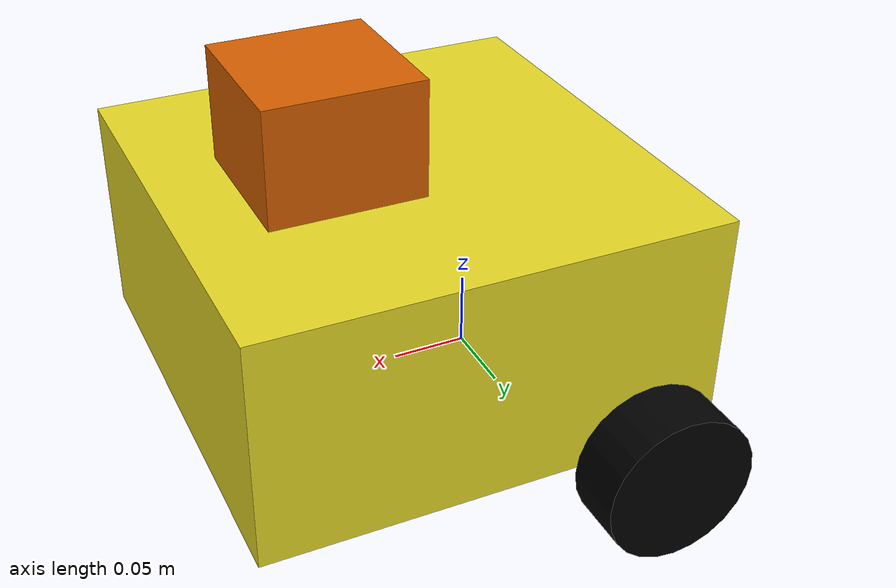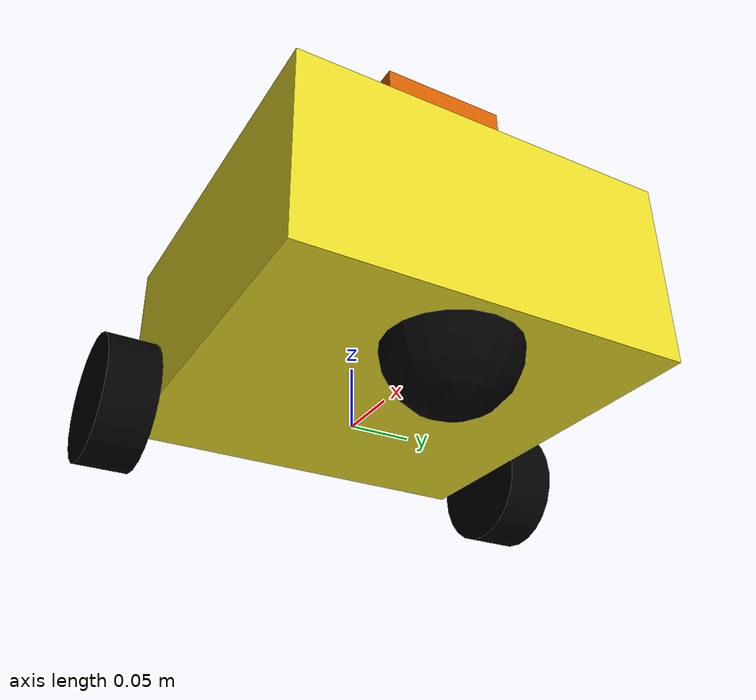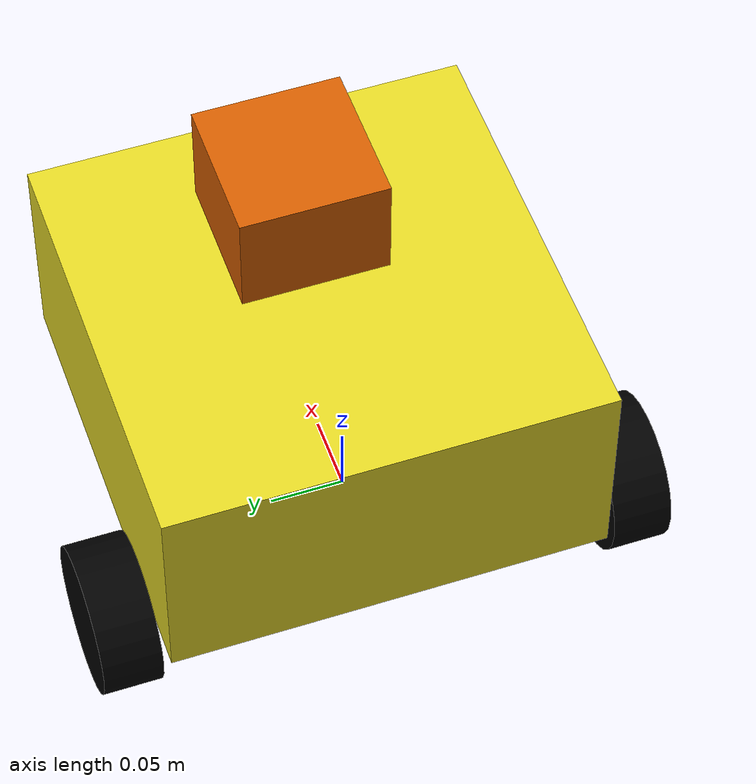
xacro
<?xml version='1.0'?>

<robot name="robot" xmlns:xacro="http://www.ros.org/wiki/xacro">

	<xacro:include filename="$(find robot)/urdf/robot.gazebo" />

	<material name="black">
		<color rgba="0 0 0 1"/>
	</material>

	<link name='robot_footprint'> </link>

	<joint name="robot_footprint_joint" type="fixed">
		<origin xyz="-0.1 0 0" rpy="0 0 0" />
		<parent link="robot_footprint"/>
		<child link="robot_body" />
	</joint>

	<link name='robot_body'>
		<pose>0 0 0 0 0 0</pose>

		<inertial>
			<mass value="3"/>
			<origin xyz="0 0 0" rpy=" 0 0 0"/>
			<inertia
					ixx="0.4298" ixy="0" ixz="0"
					iyy="0.207" iyz="0"
					izz="0.236"
			/>
		</inertial>

		<collision name='robot_collision'>
			<origin xyz="0.15 0 0.075" rpy=" 0 0 0"/>
			<geometry>
				<box size="0.3 0.3 0.15"/>
			</geometry>
		</collision>

		<visual name='robot_visual'>
			<origin xyz="0.15 0 0.075" rpy=" 0 0 0"/>
			<geometry>
				<box size="0.3 0.3 0.15"/>
			</geometry>
		</visual>
	</link>

	<link name='left_wheel'>
		<pose>0 0 0 0 0 0</pose>

		<inertial>
			<mass value="2"/>
			<origin xyz="0 0 0" rpy="0 0 0"/>
			<inertia
					ixx="0.000225" ixy="0" ixz="0"
					iyy="0.000225" iyz="0"
					izz="0.0004375"
			/>
		</inertial>

		<collision name='left_wheel_collision'>
			<origin xyz="0 0 0" rpy="0 0 0"/>
			<geometry>
				<cylinder radius="0.05" length="0.04"/>
			</geometry>
		</collision>

		<visual name='left_wheel_visual'>
			<origin xyz="0 0 0" rpy="0 0 0"/>
			<geometry>
				<cylinder radius="0.05" length="0.04"/>
			</geometry>
			<material name="black"/>
		</visual>
	</link>

	<link name='right_wheel'>
		<pose>0 0 0 0 0 0</pose>

		<inertial>
			<mass value="2"/>
			<origin xyz="0 0 0" rpy="0 0 0"/>
			<inertia
					ixx="0.000225" ixy="0" ixz="0"
					iyy="0.000225" iyz="0"
					izz="0.0004375"
			/>
		</inertial>

		<collision name='right_wheel_collision'>
			<origin xyz="0 0 0" rpy="0 0 0"/>
			<geometry>
				<cylinder radius="0.05" length="0.04"/>
			</geometry>
		</collision>

		<visual name='right_wheel_visual'>
			<origin xyz="0 0 0" rpy="0 0 0"/>
			<geometry>
				<cylinder radius="0.05" length="0.04"/>
			</geometry>
			<material name="black"/>
		</visual>
	</link>

	<link name="caster_wheel">
	<pose>0 0 0 0 0 0</pose>

	<inertial>
			<mass value="2"/>
			<origin xyz="0 0 0" rpy="0 0 0"/>
			<inertia
					ixx="0.000225" ixy="0" ixz="0"
					iyy="0.000225" iyz="0"
					izz="0.0004375"
			/>
	</inertial>

		<collision name='caster_wheel_collision'>
			<origin xyz="0 0 0" rpy="0 0 0"/>
			<geometry>
				<sphere radius="0.05" />
			</geometry>
		</collision>

    <visual>
        <geometry>
            <sphere radius="0.05" />
        </geometry>
        <material name="black"/>
    </visual>
</link>

<!-- Link for sensors -->

     <!-- Hokuyo Laser -->
  <link name="hokuyo_link">
    <collision>
      <origin xyz="0 0 0" rpy="0 0 0"/>
      <geometry>
         <box size="0.1 0.1 0.1"/>
      </geometry>
    </collision>

    <visual>
      <origin xyz="0 0 0" rpy="0 0 0"/>
      <geometry>
	    <box size="0.1 0.1 0.1"/>
      </geometry>
    </visual>

    <inertial>
      <mass value="1e-5" />
      <origin xyz="0 0 0" rpy="0 0 0"/>
      <inertia ixx="1e-6" ixy="0" ixz="0" iyy="1e-6" iyz="0" izz="1e-6" />
    </inertial>
  </link>

 <!--Top view rotatary Camera -->

	<joint type="continuous" name="left_wheel_hinge">
		<origin xyz="0.05 0.175 0" rpy="-${pi/2} 0 0"/>
		<child link="left_wheel"/>
		<parent link="robot_body"/>
		<axis xyz="0 0 1" rpy="0 0 0"/>
		<limit effort="10000" velocity="2000"/>
		<dynamics damping="1.0" friction="1.0"/>
	</joint>

	<joint type="continuous" name="right_wheel_hinge">
		<origin xyz="0.05 -0.175 0" rpy="-${pi/2} 0  0 "/>
		<child link="right_wheel"/>
		<parent link="robot_body"/>
		<axis xyz="0 0 1" rpy="0 0 0"/>
		<limit effort="10000" velocity="2000"/>
		<dynamics damping="1.0" friction="1.0"/>
	</joint>

	<joint name="caster_wheel_joint" type="fixed">
    <parent link="robot_body"/>
    <child link="caster_wheel"/>
    <origin xyz="0.24 0 0" rpy="0 0 0"/>
	<limit effort="10000" velocity="2000"/>
	<dynamics damping="1.0" friction="1.0"/>
	</joint>

	<joint name="hokuyo_joint" type="fixed">
    <axis xyz="0 1 0" />
    <origin xyz="0.2 0 0.175" rpy="0 0 0"/>
    <parent link="robot_body"/>
    <child link="hokuyo_link"/>
    </joint>

	<gazebo reference="left_wheel">
		<material>Gazebo/Black</material>
	</gazebo>

	<gazebo reference="right_wheel">
		<material>Gazebo/Black</material>
	</gazebo>

	<gazebo reference="caster_wheel">
		<material>Gazebo/Black</material>
	</gazebo>
	<gazebo reference="robot_body">
		<material>Gazebo/Yellow</material>
	</gazebo>
</robot>
